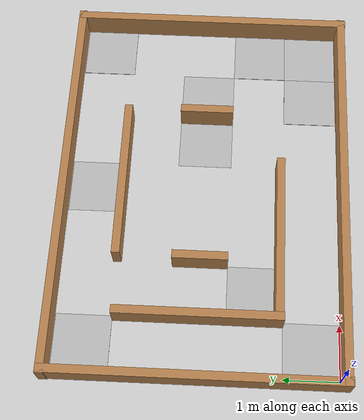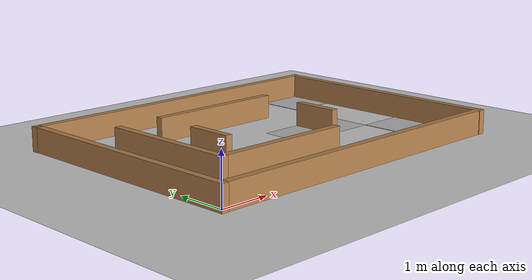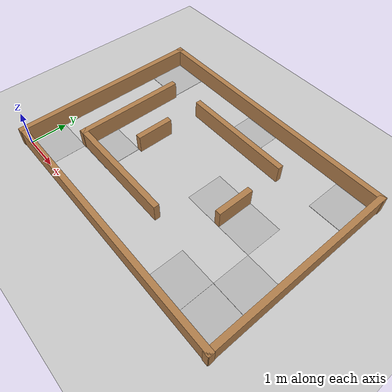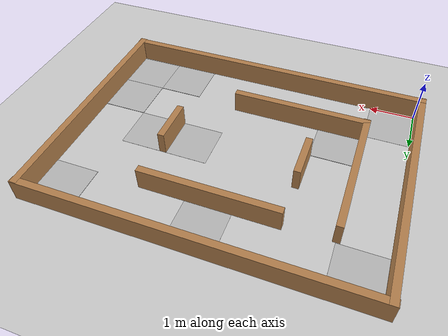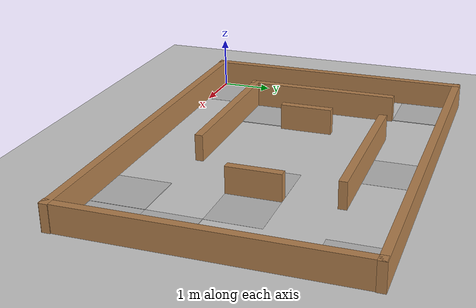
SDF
<sdf version="1.7">
 <world name="default">
  <light name="sun" type="directional">
   <pose>0 0 10 0 -0 0</pose>
   <diffuse>0.8 0.8 0.8 1</diffuse>
   <specular>0.2 0.2 0.2 1</specular>
   <attenuation>
    <range>1000</range>
    <constant>0.9</constant>
    <linear>0.01</linear>
    <quadratic>0.001</quadratic>
   </attenuation>
   <direction>-0.5 0.1 -0.9</direction>
   <spot><inner_angle>0</inner_angle><outer_angle>0</outer_angle><falloff>0</falloff></spot>
  </light>
  <model name="ground_plane">
   <static>1</static>
   <link name="link">
    <collision name="collision">
     <geometry><plane><normal>0 0 1</normal><size>100 100</size></plane></geometry>
     <surface>
      <contact><collide_bitmask>65535</collide_bitmask></contact>
      <friction><ode><mu>100</mu><mu2>50</mu2></ode></friction>
     </surface>
    </collision>
    <visual name="visual">
     <cast_shadows>0</cast_shadows>
     <geometry><plane><normal>0 0 1</normal><size>100 100</size></plane></geometry>
     <material>
      <script><uri>file://media/materials/scripts/gazebo.material</uri><name>Gazebo/Grey</name></script>
     </material>
    </visual>
   </link>
  </model>
  <gravity>0 0 -9.8</gravity>
  <magnetic_field>6e-06 2.3e-05 -4.2e-05</magnetic_field>
  <atmosphere type="adiabatic"/>
  <physics name="default_physics" default="0" type="ode">
   <max_step_size>0.005</max_step_size>
   <real_time_factor>1</real_time_factor>
  </physics>
  <scene><ambient>0.4 0.4 0.4 1</ambient><background>0.7 0.7 0.7 1</background><shadows>1</shadows></scene>
  <audio><device>default</device></audio>
  <spherical_coordinates>
   <surface_model>EARTH_WGS84</surface_model>
   <latitude_deg>0</latitude_deg>
   <longitude_deg>0</longitude_deg>
   <elevation>0</elevation>
   <heading_deg>0</heading_deg>
  </spherical_coordinates>
  <model name="world3">
   <pose>3.49098 2.49495 0 0 -0 0</pose>
   <link name="Wall_0">
    <collision name="Wall_0_Collision">
     <geometry><box><size>5.32763 0.15 0.5</size></box></geometry>
     <pose>0 0 0.25 0 -0 0</pose>
    </collision>
    <visual name="Wall_0_Visual">
     <pose>0 0 0.25 0 -0 0</pose>
     <geometry><box><size>5.32763 0.15 0.5</size></box></geometry>
     <material>
      <script><uri>file://media/materials/scripts/gazebo.material</uri><name>Gazebo/Wood</name></script>
      <ambient>1 1 1 1</ambient>
     </material>
     <meta><layer>0</layer></meta>
    </visual>
    <pose>-3.57048 0.000862 0 0 -0 -1.5708</pose>
   </link>
   <link name="Wall_11">
    <collision name="Wall_11_Collision">
     <geometry><box><size>3.09258 0.15 0.5</size></box></geometry>
     <pose>0 0 0.25 0 -0 0</pose>
    </collision>
    <visual name="Wall_11_Visual">
     <pose>0 0 0.25 0 -0 0</pose>
     <geometry><box><size>3.09258 0.15 0.5</size></box></geometry>
     <material>
      <script><uri>file://media/materials/scripts/gazebo.material</uri><name>Gazebo/Wood</name></script>
      <ambient>1 1 1 1</ambient>
     </material>
     <meta><layer>0</layer></meta>
    </visual>
    <pose>-1.03078 -1.41516 0 0 -0 0</pose>
   </link>
   <link name="Wall_13">
    <collision name="Wall_13_Collision">
     <geometry><box><size>1 0.15 0.5</size></box></geometry>
     <pose>0 0 0.25 0 -0 0</pose>
    </collision>
    <visual name="Wall_13_Visual">
     <pose>0 0 0.25 0 -0 0</pose>
     <geometry><box><size>1 0.15 0.5</size></box></geometry>
     <material>
      <script><uri>file://media/materials/scripts/gazebo.material</uri><name>Gazebo/Wood</name></script>
      <ambient>1 1 1 1</ambient>
     </material>
     <meta><layer>0</layer></meta>
    </visual>
    <pose>-1.4573 0.004742 0 0 -0 -1.5708</pose>
   </link>
   <link name="Wall_15">
    <collision name="Wall_15_Collision">
     <geometry><box><size>3 0.15 0.5</size></box></geometry>
     <pose>0 0 0.25 0 -0 0</pose>
    </collision>
    <visual name="Wall_15_Visual">
     <pose>0 0 0.25 0 -0 0</pose>
     <geometry><box><size>3 0.15 0.5</size></box></geometry>
     <material>
      <script><uri>file://media/materials/scripts/gazebo.material</uri><name>Gazebo/Wood</name></script>
      <ambient>1 1 1 1</ambient>
     </material>
     <meta><layer>0</layer></meta>
    </visual>
    <pose>0.020604 1.50097 0 0 -0 0</pose>
   </link>
   <link name="Wall_17">
    <collision name="Wall_17_Collision">
     <geometry><box><size>1 0.15 0.5</size></box></geometry>
     <pose>0 0 0.25 0 -0 0</pose>
    </collision>
    <visual name="Wall_17_Visual">
     <pose>0 0 0.25 0 -0 0</pose>
     <geometry><box><size>1 0.15 0.5</size></box></geometry>
     <material>
      <script><uri>file://media/materials/scripts/gazebo.material</uri><name>Gazebo/Wood</name></script>
      <ambient>1 1 1 1</ambient>
     </material>
     <meta><layer>0</layer></meta>
    </visual>
    <pose>1.5051 0.004742 0 0 -0 -1.5708</pose>
   </link>
   <link name="Wall_3">
    <collision name="Wall_3_Collision">
     <geometry><box><size>7.30417 0.15 0.5</size></box></geometry>
     <pose>0 0 0.25 0 -0 0</pose>
    </collision>
    <visual name="Wall_3_Visual">
     <pose>0 0 0.25 0 -0 0</pose>
     <geometry><box><size>7.30417 0.15 0.5</size></box></geometry>
     <material>
      <script><uri>file://media/materials/scripts/gazebo.material</uri><name>Gazebo/Wood</name></script>
      <ambient>1 1 1 1</ambient>
     </material>
     <meta><layer>0</layer></meta>
    </visual>
    <pose>0.006613 -2.57645 0 0 -0 0</pose>
   </link>
   <link name="Wall_5">
    <collision name="Wall_5_Collision">
     <geometry><box><size>5.31613 0.15 0.5</size></box></geometry>
     <pose>0 0 0.25 0 -0 0</pose>
    </collision>
    <visual name="Wall_5_Visual">
     <pose>0 0 0.25 0 -0 0</pose>
     <geometry><box><size>5.31613 0.15 0.5</size></box></geometry>
     <material>
      <script><uri>file://media/materials/scripts/gazebo.material</uri><name>Gazebo/Wood</name></script>
      <ambient>1 1 1 1</ambient>
     </material>
     <meta><layer>0</layer></meta>
    </visual>
    <pose>3.57048 -0.006612 0 0 -0 1.5708</pose>
   </link>
   <link name="Wall_7">
    <collision name="Wall_7_Collision">
     <geometry><box><size>7.3174 0.15 0.5</size></box></geometry>
     <pose>0 0 0.25 0 -0 0</pose>
    </collision>
    <visual name="Wall_7_Visual">
     <pose>0 0 0.25 0 -0 0</pose>
     <geometry><box><size>7.3174 0.15 0.5</size></box></geometry>
     <material>
      <script><uri>file://media/materials/scripts/gazebo.material</uri><name>Gazebo/Wood</name></script>
      <ambient>1 1 1 1</ambient>
     </material>
     <meta><layer>0</layer></meta>
    </visual>
    <pose>0 2.58968 0 0 -0 0</pose>
   </link>
   <link name="Wall_9">
    <collision name="Wall_9_Collision">
     <geometry><box><size>3 0.15 0.5</size></box></geometry>
     <pose>0 0 0.25 0 -0 0</pose>
    </collision>
    <visual name="Wall_9_Visual">
     <pose>0 0 0.25 0 -0 0</pose>
     <geometry><box><size>3 0.15 0.5</size></box></geometry>
     <material>
      <script><uri>file://media/materials/scripts/gazebo.material</uri><name>Gazebo/Wood</name></script>
      <ambient>1 1 1 1</ambient>
     </material>
     <meta><layer>0</layer></meta>
    </visual>
    <pose>-2.50207 -0.003383 0 0 -0 -1.5708</pose>
   </link>
   <static>1</static>
  </model>
  <model name="plane_barrier">
   <static>1</static>
   <link name="link">
    <pose>0 0 0 0 -0 1.5708</pose>
    <visual name="visual">
     <geometry><box><size>1 1 0.001</size></box></geometry>
     <material>
      <script>
       <uri>model://plane_barrier/materials/scripts</uri>
       <uri>model://plane_barrier/materials/textures</uri>
       <name>PlaneBarrier/Diffuse</name>
      </script>
     </material>
    </visual>
   </link>
   <pose>6.5 0.5 0 0 -0 0</pose>
  </model>
  <model name="plane_corner">
   <static>1</static>
   <link name="link">
    <pose>0 0 0 0 -0 1.5708</pose>
    <visual name="visual">
     <geometry><box><size>1 1 0.01</size></box></geometry>
     <material>
      <script>
       <uri>model://plane_corner/materials/scripts</uri>
       <uri>model://plane_corner/materials/textures</uri>
       <name>PlaneCorner/Diffuse</name>
      </script>
     </material>
    </visual>
   </link>
   <pose>5.5 0.5 0 0 -0 0</pose>
  </model>
  <model name="plane_corner_0">
   <static>1</static>
   <link name="link">
    <pose>0 0 0 0 -0 1.5708</pose>
    <visual name="visual">
     <geometry><box><size>1 1 0.01</size></box></geometry>
     <material>
      <script>
       <uri>model://plane_corner/materials/scripts</uri>
       <uri>model://plane_corner/materials/textures</uri>
       <name>PlaneCorner/Diffuse</name>
      </script>
     </material>
    </visual>
   </link>
   <pose>6.5 1.5 0 0 -0 0</pose>
  </model>
  <model name="plane_corner_1">
   <static>1</static>
   <link name="link">
    <pose>0 0 0 0 -0 1.5708</pose>
    <visual name="visual">
     <geometry><box><size>1 1 0.01</size></box></geometry>
     <material>
      <script>
       <uri>model://plane_corner/materials/scripts</uri>
       <uri>model://plane_corner/materials/textures</uri>
       <name>PlaneCorner/Diffuse</name>
      </script>
     </material>
    </visual>
   </link>
   <pose>0.5 4.5 0 0 -0 0</pose>
  </model>
  <model name="plane_corner_2">
   <static>1</static>
   <link name="link">
    <pose>0 0 0 0 -0 1.5708</pose>
    <visual name="visual">
     <geometry><box><size>1 1 0.01</size></box></geometry>
     <material>
      <script>
       <uri>model://plane_corner/materials/scripts</uri>
       <uri>model://plane_corner/materials/textures</uri>
       <name>PlaneCorner/Diffuse</name>
      </script>
     </material>
    </visual>
   </link>
   <pose>6.5 4.5 0 0 -0 0</pose>
  </model>
  <model name="plane_corner_3">
   <static>1</static>
   <link name="link">
    <pose>0 0 0 0 -0 1.5708</pose>
    <visual name="visual">
     <geometry><box><size>1 1 0.01</size></box></geometry>
     <material>
      <script>
       <uri>model://plane_corner/materials/scripts</uri>
       <uri>model://plane_corner/materials/textures</uri>
       <name>PlaneCorner/Diffuse</name>
      </script>
     </material>
    </visual>
   </link>
   <pose>1.5 1.5 0 0 -0 0</pose>
  </model>
  <model name="plane_slop_left">
   <static>1</static>
   <link name="link">
    <pose>0 0 0 0 -0 1.5708</pose>
    <visual name="visual">
     <geometry><box><size>1 1 0.001</size></box></geometry>
     <material>
      <script>
       <uri>model://plane_slop_left/materials/scripts</uri>
       <uri>model://plane_slop_left/materials/textures</uri>
       <name>PlaneSlop_left/Diffuse</name>
      </script>
     </material>
    </visual>
   </link>
   <pose>5.5 2.5 0 0 -0 0</pose>
  </model>
  <model name="plane_slop_right">
   <static>1</static>
   <link name="link">
    <pose>0 0 0 0 -0 1.5708</pose>
    <visual name="visual">
     <geometry><box><size>1 1 0.001</size></box></geometry>
     <material>
      <script>
       <uri>model://plane_slop_right/materials/scripts</uri>
       <uri>model://plane_slop_right/materials/textures</uri>
       <name>PlaneSlop_right/Diffuse</name>
      </script>
     </material>
    </visual>
   </link>
   <pose>4.5 2.5 0 0 -0 0</pose>
  </model>
  <model name="plane_slop_down">
   <static>1</static>
   <link name="link">
    <pose>0 0 0 0 -0 1.5708</pose>
    <visual name="visual">
     <geometry><box><size>1 1 0.001</size></box></geometry>
     <material>
      <script>
       <uri>model://plane_slop_down/materials/scripts</uri>
       <uri>model://plane_slop_down/materials/textures</uri>
       <name>PlaneSlop_down/Diffuse</name>
      </script>
     </material>
    </visual>
   </link>
   <pose>3.5 4.5 0 0 -0 0</pose>
  </model>
  <model name="plane_start">
   <static>1</static>
   <link name="link">
    <pose>0 0 0 0 -0 1.5708</pose>
    <visual name="visual">
     <geometry><box><size>1 1 0.001</size></box></geometry>
     <material>
      <script>
       <uri>model://plane_start/materials/scripts</uri>
       <uri>model://plane_start/materials/textures</uri>
       <name>PlaneStart/Diffuse</name>
      </script>
     </material>
    </visual>
   </link>
   <pose>0.5 0.5 0 0 -0 0</pose>
  </model>
  <model name="unit_box_slop_right">
   <pose>4.47108 2.5 0.5 0 -0 -4e-06</pose>
   <link name="link">
    <inertial>
     <mass>1</mass>
     <inertia>
      <ixx>0.166667</ixx>
      <ixy>0</ixy>
      <ixz>0</ixz>
      <iyy>0.166667</iyy>
      <iyz>0</iyz>
      <izz>0.166667</izz>
     </inertia>
    </inertial>
    <collision name="collision"><geometry><box><size>0.9 0.9 1</size></box></geometry></collision>
    <visual name="visual">
     <transparency>1</transparency>
     <geometry><box><size>0.9 0.9 1</size></box></geometry>
     <material>
      <script><name>Gazebo/Grey</name><uri>file://media/materials/scripts/gazebo.material</uri></script>
     </material>
    </visual>
   </link>
  </model>
  <model name="unit_box_slop_left">
   <pose>5.52108 2.5 0.5 0 0 -4e-06</pose>
   <link name="link">
    <inertial>
     <mass>1</mass>
     <inertia>
      <ixx>0.166667</ixx>
      <ixy>0</ixy>
      <ixz>0</ixz>
      <iyy>0.166667</iyy>
      <iyz>0</iyz>
      <izz>0.166667</izz>
     </inertia>
    </inertial>
    <collision name="collision"><geometry><box><size>0.9 0.9 1</size></box></geometry></collision>
    <visual name="visual">
     <transparency>1</transparency>
     <geometry><box><size>0.9 0.9 1</size></box></geometry>
     <material>
      <script><name>Gazebo/Grey</name><uri>file://media/materials/scripts/gazebo.material</uri></script>
     </material>
    </visual>
   </link>
  </model>
  <model name="unit_box_slop_down">
   <pose>3.5 4.52092 0.5 0 -0 0</pose>
   <link name="link">
    <inertial>
     <mass>1</mass>
     <inertia>
      <ixx>0.166667</ixx>
      <ixy>0</ixy>
      <ixz>0</ixz>
      <iyy>0.166667</iyy>
      <iyz>0</iyz>
      <izz>0.166667</izz>
     </inertia>
    </inertial>
    <collision name="collision"><geometry><box><size>0.9 0.9 1</size></box></geometry></collision>
    <visual name="visual">
     <transparency>1</transparency>
     <geometry><box><size>0.9 0.9 1</size></box></geometry>
     <material>
      <script><name>Gazebo/Grey</name><uri>file://media/materials/scripts/gazebo.material</uri></script>
     </material>
    </visual>
   </link>
  </model>
  <model name="unit_box_barrier">
   <pose>6.5 0.5 0.5 0 -0 0</pose>
   <link name="link">
    <inertial>
     <mass>1</mass>
     <inertia>
      <ixx>0.166667</ixx>
      <ixy>0</ixy>
      <ixz>0</ixz>
      <iyy>0.166667</iyy>
      <iyz>0</iyz>
      <izz>0.166667</izz>
     </inertia>
    </inertial>
    <collision name="collision"><geometry><box><size>0.9 0.9 1</size></box></geometry></collision>
    <visual name="visual">
     <transparency>1</transparency>
     <geometry><box><size>0.9 0.9 1</size></box></geometry>
     <material>
      <script><name>Gazebo/Grey</name><uri>file://media/materials/scripts/gazebo.material</uri></script>
     </material>
    </visual>
   </link>
  </model>
 </world>
</sdf>
